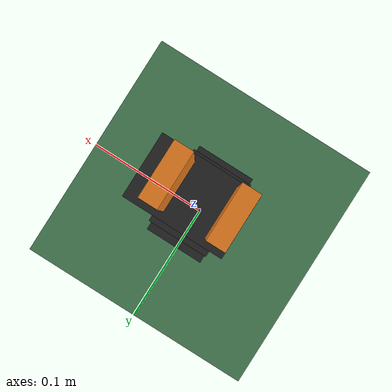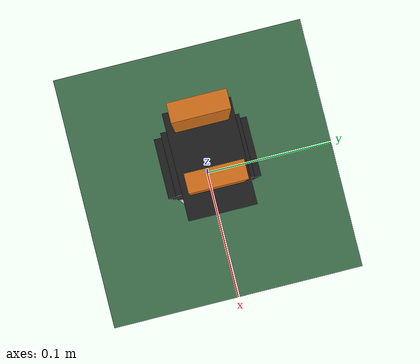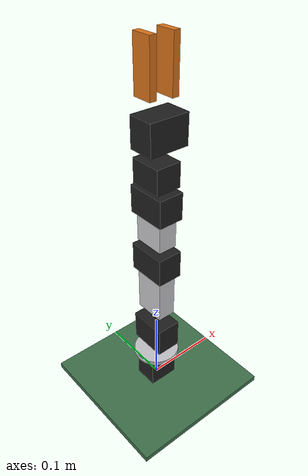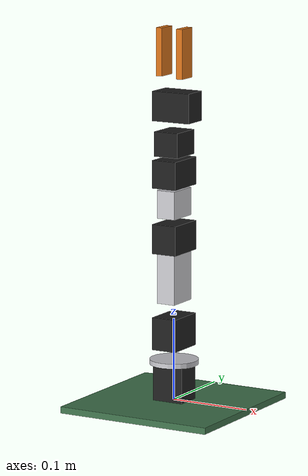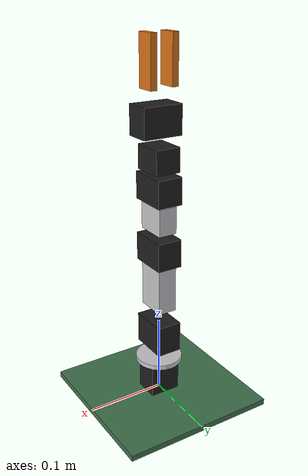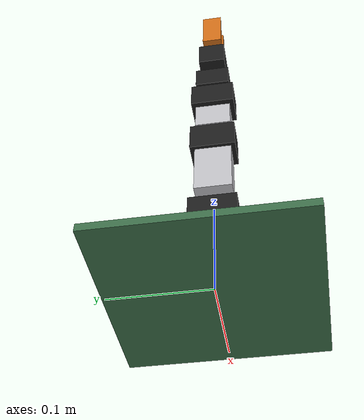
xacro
<?xml version="1.0"?>
<robot name="pouk_arm" xmlns:xacro="http://www.ros.org/wiki/xacro">

  <!-- длины условных звеньев, м (приложение А) -->
  <xacro:property name="l1" value="0.103"/>    <!-- ось joint2 над плоскостью крепления -->
  <xacro:property name="l2" value="0.1045"/>   <!-- joint2 -> joint3 -->
  <xacro:property name="l3" value="0.079"/>    <!-- joint3 -> joint4 -->
  <xacro:property name="l4" value="0.169"/>    <!-- joint4 -> кончик схвата -->
  <xacro:property name="h1" value="0.045"/>    <!-- верх поворотного основания (joint1) -->
  <xacro:property name="d5" value="0.047"/>    <!-- joint4 -> ось вращения схвата (joint5) -->

  <!-- характеристики AX-12A: момент удержания 1,5 Н·м; скорость — предел модели планирования -->
  <xacro:property name="effort" value="1.5"/>
  <xacro:property name="velocity" value="1.5"/>

  <material name="servo"><color rgba="0.12 0.12 0.12 1.0"/></material>
  <material name="bracket"><color rgba="0.78 0.78 0.80 1.0"/></material>
  <material name="plate"><color rgba="0.25 0.45 0.30 1.0"/></material>
  <material name="jaw"><color rgba="0.85 0.45 0.10 1.0"/></material>

  <!-- тело: одинаковые визуальная и столкновительная формы -->
  <xacro:macro name="box_body" params="size xyz material">
    <visual>
      <origin xyz="${xyz}" rpy="0 0 0"/>
      <geometry><box size="${size}"/></geometry>
      <material name="${material}"/>
    </visual>
    <collision>
      <origin xyz="${xyz}" rpy="0 0 0"/>
      <geometry><box size="${size}"/></geometry>
    </collision>
  </xacro:macro>

  <xacro:macro name="arm_joint" params="name type parent child xyz axis lower upper">
    <joint name="${name}" type="${type}">
      <parent link="${parent}"/>
      <child link="${child}"/>
      <origin xyz="${xyz}" rpy="0 0 0"/>
      <axis xyz="${axis}"/>
      <limit lower="${lower}" upper="${upper}" effort="${effort}" velocity="${velocity}"/>
    </joint>
  </xacro:macro>

  <!-- ============================================================ основание -->
  <link name="base_link">
    <xacro:box_body size="0.20 0.20 0.008" xyz="0 0 -0.004" material="plate"/>
    <!-- привод ID 1 стоит вертикально, выходной вал вверх -->
    <xacro:box_body size="0.040 0.032 0.050" xyz="0 0 0.020" material="servo"/>
  </link>

  <xacro:arm_joint name="joint1" type="revolute" parent="base_link" child="link1"
                   xyz="0 0 ${h1}" axis="0 0 1" lower="-1.790" upper="1.790"/>

  <link name="link1">
    <visual>
      <origin xyz="0 0 0.003" rpy="0 0 0"/>
      <geometry><cylinder radius="0.030" length="0.006"/></geometry>
      <material name="bracket"/>
    </visual>
    <collision>
      <origin xyz="0 0 0.003" rpy="0 0 0"/>
      <geometry><cylinder radius="0.030" length="0.006"/></geometry>
    </collision>
    <!-- привод ID 2, ось горизонтальна -->
    <xacro:box_body size="0.032 0.050 0.040" xyz="0 0 ${l1 - h1 - 0.018}" material="servo"/>
  </link>

  <xacro:arm_joint name="joint2" type="revolute" parent="link1" child="link2"
                   xyz="0 0 ${l1 - h1}" axis="0 1 0" lower="-1.278" upper="1.278"/>

  <!-- ============================================================ плечо -->
  <link name="link2">
    <xacro:box_body size="0.024 0.040 0.066" xyz="0 0 0.052" material="bracket"/>
    <!-- привод ID 3 у оси joint3 -->
    <xacro:box_body size="0.032 0.050 0.036" xyz="0 0 ${l2 - 0.006}" material="servo"/>
  </link>

  <xacro:arm_joint name="joint3" type="revolute" parent="link2" child="link3"
                   xyz="0 0 ${l2}" axis="0 1 0" lower="-1.278" upper="1.943"/>

  <!-- ============================================================ предплечье -->
  <link name="link3">
    <xacro:box_body size="0.024 0.040 0.034" xyz="0 0 0.036" material="bracket"/>
    <!-- привод ID 4 у оси joint4 -->
    <xacro:box_body size="0.032 0.050 0.034" xyz="0 0 ${l3 - 0.006}" material="servo"/>
  </link>

  <xacro:arm_joint name="joint4" type="revolute" parent="link3" child="link4"
                   xyz="0 0 ${l3}" axis="0 1 0" lower="-0.767" upper="1.943"/>

  <!-- ============================================================ кисть -->
  <link name="link4">
    <!-- привод ID 5, ось вдоль инструмента -->
    <xacro:box_body size="0.032 0.040 0.030" xyz="0 0 0.030" material="servo"/>
  </link>

  <xacro:arm_joint name="joint5" type="revolute" parent="link4" child="link5"
                   xyz="0 0 ${d5}" axis="0 0 1" lower="-1.790" upper="1.790"/>

  <link name="link5">
    <!-- привод схвата ID 6 и неподвижная губка -->
    <xacro:box_body size="0.050 0.032 0.036" xyz="0.004 0 0.028" material="servo"/>
    <xacro:box_body size="0.008 0.024 0.060" xyz="0.014 0 ${l4 - d5 - 0.030}" material="jaw"/>
  </link>

  <xacro:arm_joint name="gripper_joint" type="revolute" parent="link5" child="gripper_link"
                   xyz="-0.004 0 0.060" axis="0 1 0" lower="-1.023" upper="1.023"/>

  <link name="gripper_link">
    <!-- подвижная губка -->
    <xacro:box_body size="0.008 0.024 0.058" xyz="-0.010 0 ${l4 - d5 - 0.060 - 0.029}" material="jaw"/>
  </link>

  <!-- кончик схвата: целевая точка ОЗК и MoveIt -->
  <joint name="tool0_joint" type="fixed">
    <parent link="link5"/>
    <child link="tool0"/>
    <origin xyz="0 0 ${l4 - d5}" rpy="0 0 0"/>
  </joint>
  <link name="tool0"/>

</robot>
